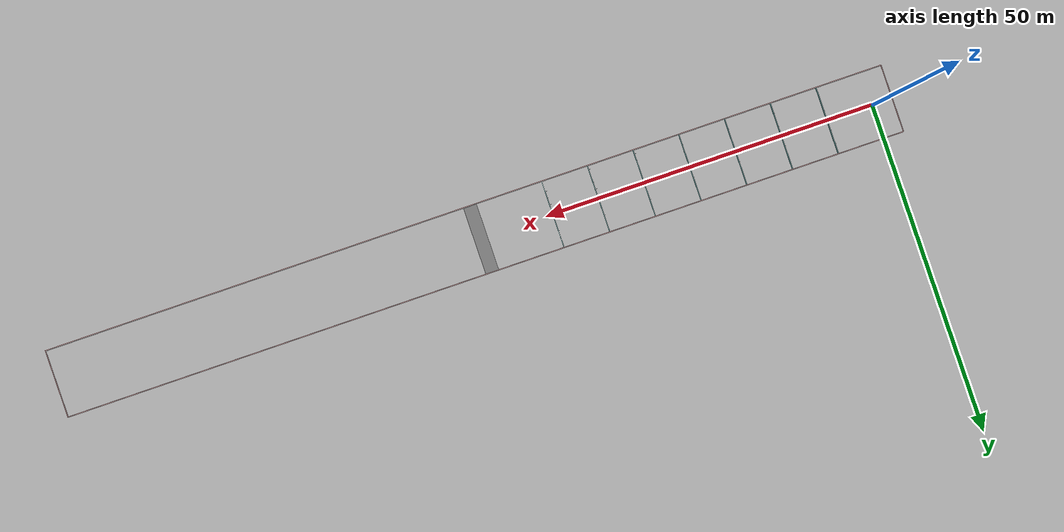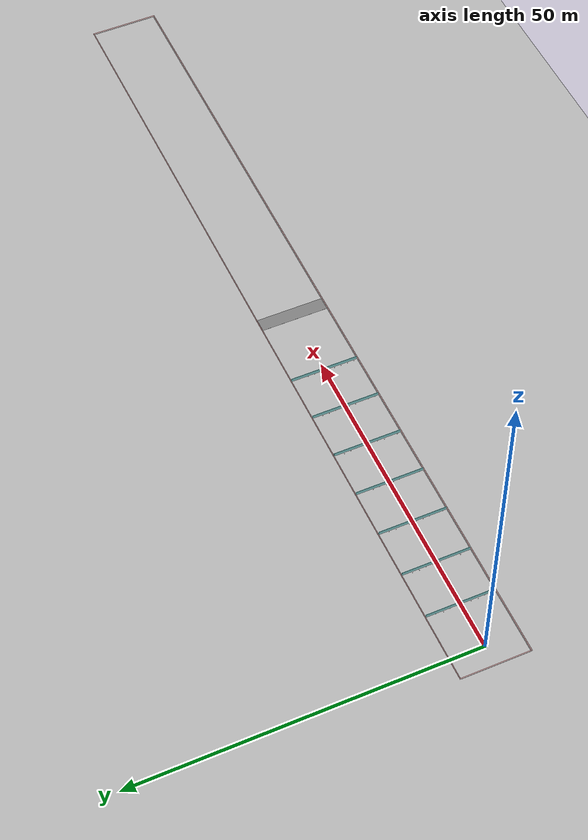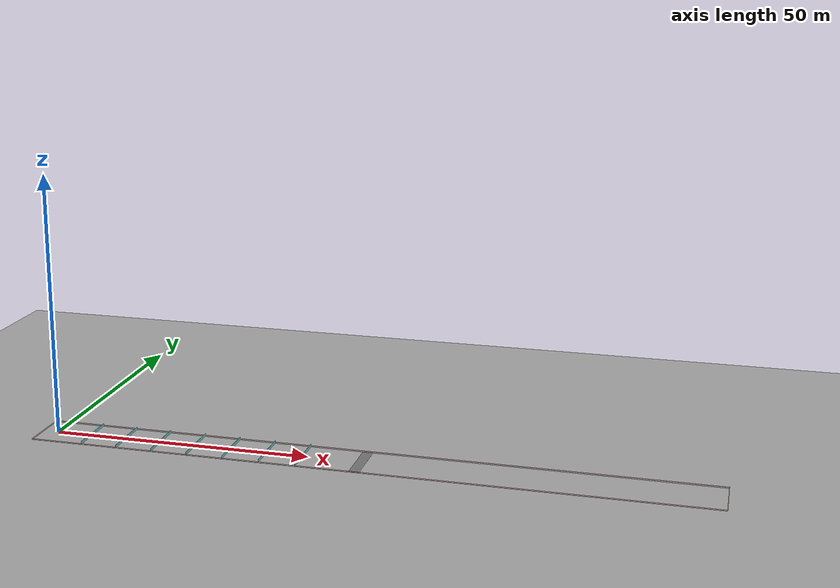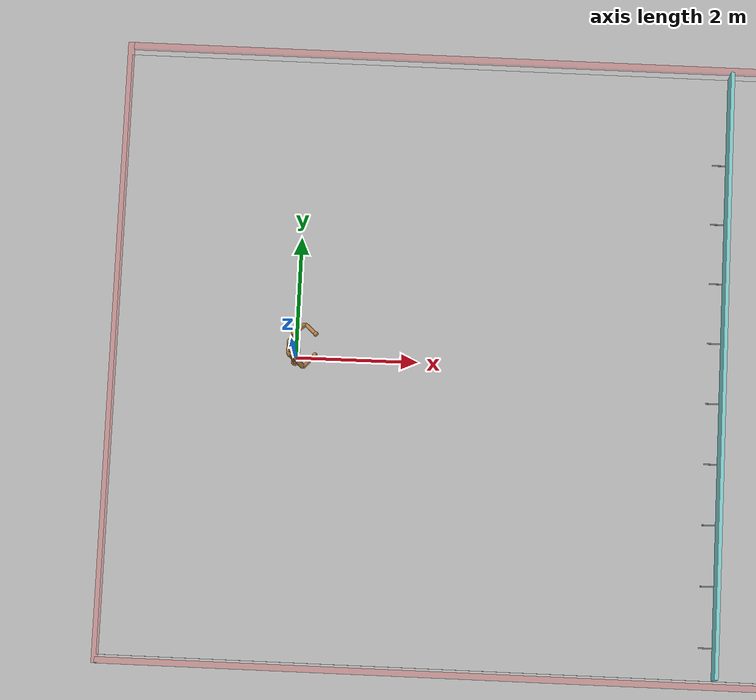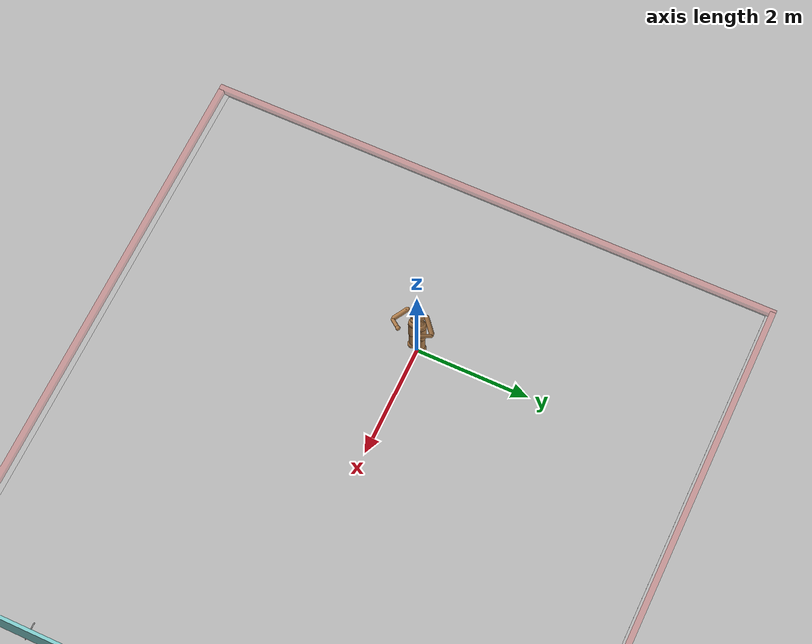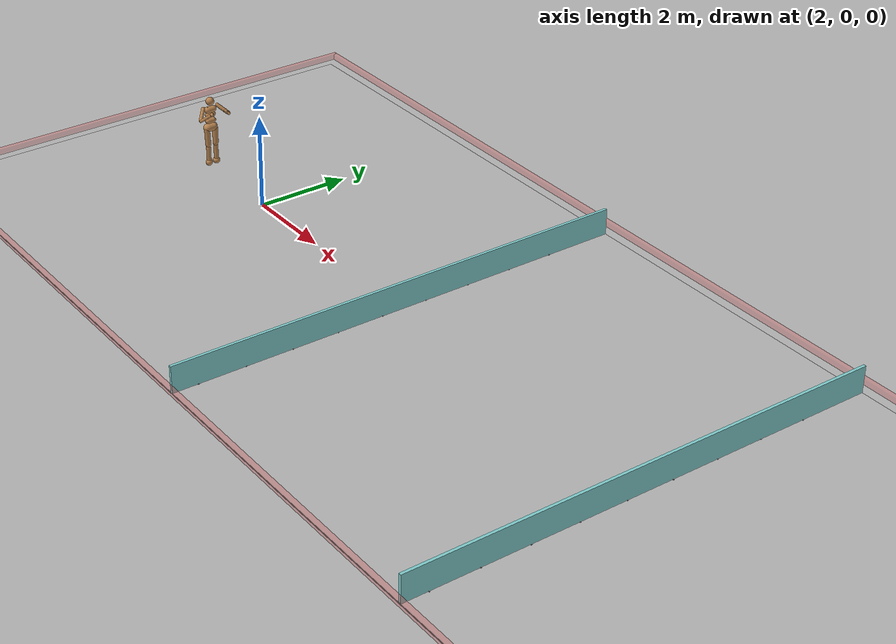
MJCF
<mujoco model="hurdles humanoid">
  <option timestep="0.004" iterations="4" ls_iterations="8" solver="Newton">
    <flag eulerdamp="disable"/>
  </option>

  <statistic center="0 0 0.1" extent="10.0" meansize="0.04"/>

  <visual>
    <rgba force="1 0 0 1" haze = "0.71 0.71 0.71 0.51" fog="0.71 0.71 0.71 1" rangefinder="1 1 0.1 0.11"/>
    <global azimuth="140" elevation="-20" offwidth="1920" offheight="1080"/>
  </visual>

  <asset>
    <texture type="skybox" builtin="gradient" rgb1="0.71 0.71 0.71" rgb2="0.71 0.71 0.71" width="800" height="800"/>
    <texture name="grey_squares" builtin="checker" height="800" width="800" rgb1="0.71 0.71 0.71" rgb2="0.71 0.71 0.71" type="2d" mark="edge" markrgb="1 1 1"/>
    <texture name="blue_white_gradient" type="2d" builtin="gradient" width="256" height="256" rgb1="0.0 0.6 0.6" rgb2="1.0 1.0 1.0" random="0.12"/>
    <texture name="black_white_checkers" type="2d" builtin="checker" width="512" height="512" rgb1="0 0 0" rgb2="1 1 1"/>

    <material name="body" rgba=".7 .5 .3 1" specular="0.9" shininess="0.8"/>
    <material name="floor" reflectance="0" texrepeat="1 1" texuniform="true" texture="grey_squares"/>
    <material name="hurdle" texture="blue_white_gradient" texuniform="true" specular="0.3" shininess="0.6"/>
    <material name="hurdle_feet" rgba="1 1 1 0.51" texuniform="true" specular="0.3" shininess="0.6"/>
    <material name="finish_line" texture="black_white_checkers" texrepeat="2 10"/>
  </asset>

  <default>
    <geom contype="0" conaffinity="0" condim="3"/>
    <joint armature="1" damping="1" limited="true"/>
    <motor ctrllimited="true" ctrlrange="-.4 .4"/>
    <default class="humanoid">
      <geom type="capsule" material="body"/>
    </default>
    <default class="hurdle">
      <geom material="hurdle"/>
    </default>
    <default class="hurdle_feet">
      <geom material="hurdle_feet"/>
    </default>
  </default>

  <worldbody>
    <!-- Building out the track -->
    <geom name="floor" pos="61 0 0" size="64 5 0.010" type="box" material="floor"/>
    <geom name="floor_bottom" pos="0 0 -10" size="0 0 0.010" type="plane" material="floor"/>
    <geom name="side_railing1" type="box" pos="61 5.1 0.2" size="64. 0.05 0.06" rgba="0.9 0.3 0.3 0.31"/>
    <geom name="side_railing2" type="box" pos="61 -5.1 0.2" size="64. 0.05 0.06" rgba="0.9 0.3 0.3 0.31"/>
    <geom name="front_railing" type="box" pos="125.0 0.0 0.2" size="0.05 5.15 0.06" rgba="0.9 0.3 0.3 0.31"/>
    <geom name="back_railing" type="box" pos="-3.0 0.0 0.2" size="0.05 5.15 0.06" rgba="0.9 0.3 0.3 0.31"/>
    <geom name="finish_line" type="box" pos="60 0 0.01" size="1 5 0.01" material="finish_line"/>

    <!-- Humanoid -->
    <body name="humanoid" childclass="humanoid" pos="0 0 1.40">

      <light name="tracking_light" pos="0 0 7" dir="0 0 -1" specular="0.8 0.8 0.8" mode="trackcom"/>
      <camera name="cam_default" mode="trackcom" pos="-6.716 -1.785 2.220" xyaxes="-0.046 -0.999 -0.000 0.235 -0.011 0.972"/>
      <site name="humanoid" size="0.01" pos="-0 0 -0"/>

      <joint name="humanoid_root" type="free" armature="0" damping="0" limited="false" pos="0 0 0" stiffness="0"/>
      <geom name="humanoid_torso" fromto="0 -.07 0 0 .07 0" size="0.07" type="capsule"/>

      <body name="humanoid_head" pos="0 0 0.19">
        <geom name="humanoid_head" pos="0 0 0" size=".09" type="sphere"/>
        <site name="humanoid_ray_00" fromto=".23 -.02  -.03 .17 0 .0" type="capsule" size=".002 .1" group="4"/>
        <site name="humanoid_ray_01" fromto=".23 -.01  -.03 .17 0 .0" type="capsule" size=".002 .1" group="4"/>
        <site name="humanoid_ray_02" fromto=".23   0   -.03 .17 0 .0" type="capsule" size=".002 .1" group="4"/>
        <site name="humanoid_ray_03" fromto=".23  .01  -.03 .17 0 .0" type="capsule" size=".002 .1" group="4"/>
        <site name="humanoid_ray_04" fromto=".23  .02  -.03 .17 0 .0" type="capsule" size=".002 .1" group="4"/>

        <site name="humanoid_ray_05" fromto=".22 -.02  -.03  .17 0 .0" type="capsule" size=".002 .1" group="4"/>
        <site name="humanoid_ray_06" fromto=".22 -.01  -.03  .17 0 .0" type="capsule" size=".002 .1" group="4"/>
        <site name="humanoid_ray_07" fromto=".22   0   -.03  .17 0 .0" type="capsule" size=".002 .1" group="4"/>
        <site name="humanoid_ray_08" fromto=".22  .01  -.03  .17 0 .0" type="capsule" size=".002 .1" group="4"/>
        <site name="humanoid_ray_09" fromto=".22  .02  -.03  .17 0 .0" type="capsule" size=".002 .1" group="4"/>

        <site name="humanoid_ray_10" fromto=".21 -.02  -.03 .17 0 .0" type="capsule" size=".002 .1" group="4"/>
        <site name="humanoid_ray_11" fromto=".21 -.01  -.03 .17 0 .0" type="capsule" size=".002 .1" group="4"/>
        <site name="humanoid_ray_12" fromto=".21   0   -.03 .17 0 .0" type="capsule" size=".002 .1" group="4"/>
        <site name="humanoid_ray_13" fromto=".21  .01  -.03 .17 0 .0" type="capsule" size=".002 .1" group="4"/>
        <site name="humanoid_ray_14" fromto=".21  .02  -.03 .17 0 .0" type="capsule" size=".002 .1" group="4"/>

        <site name="humanoid_ray_15" fromto=".2 -.02  -.03 .17 0 .0" type="capsule" size=".002 .1" group="4"/>
        <site name="humanoid_ray_16" fromto=".2 -.01  -.03 .17 0 .0" type="capsule" size=".002 .1" group="4"/>
        <site name="humanoid_ray_17" fromto=".2   0   -.03 .17 0 .0" type="capsule" size=".002 .1" group="4"/>
        <site name="humanoid_ray_18" fromto=".2  .01  -.03 .17 0 .0" type="capsule" size=".002 .1" group="4"/>
        <site name="humanoid_ray_19" fromto=".2  .02  -.03 .17 0 .0" type="capsule" size=".002 .1" group="4"/>

        <site name="humanoid_ray_20" fromto=".19 -.02  -.03 .17  0 .0" type="capsule" size=".002 .1" group="4"/>
        <site name="humanoid_ray_21" fromto=".19 -.01  -.03 .17  0 .0" type="capsule" size=".002 .1" group="4"/>
        <site name="humanoid_ray_22" fromto=".19   0   -.03 .17  0 .0" type="capsule" size=".002 .1" group="4"/>
        <site name="humanoid_ray_23" fromto=".19  .01  -.03 .17  0 .0" type="capsule" size=".002 .1" group="4"/>
        <site name="humanoid_ray_24" fromto=".19  .02  -.03 .17  0 .0" type="capsule" size=".002 .1" group="4"/>

        <site name="humanoid_ray_25" fromto=".18 -.02  -.03 .17  0 .00" type="capsule" size=".002 .1" group="4"/>
        <site name="humanoid_ray_26" fromto=".18 -.01  -.03 .17  0 .00" type="capsule" size=".002 .1" group="4"/>
        <site name="humanoid_ray_27" fromto=".18   0   -.03 .17  0 .00" type="capsule" size=".002 .1" group="4"/>
        <site name="humanoid_ray_28" fromto=".18  .01  -.03 .17  0 .00" type="capsule" size=".002 .1" group="4"/>
        <site name="humanoid_ray_29" fromto=".18  .02  -.03 .17  0 .00" type="capsule" size=".002 .1" group="4"/>
      </body>

      <geom name="humanoid_uwaist" fromto="-.01 -.06 -.12 -.01 .06 -.12" size="0.06" type="capsule"/>
      <body name="humanoid_lwaist" pos="-.01 0 -0.260" quat="1.000 0 -0.002 0">
        <geom name="humanoid_lwaist" fromto="0 -.06 0 0 .06 0" size="0.06" type="capsule"/>
        <joint name="humanoid_abdomen_z" armature="0.02" axis="0 0 1" damping="5" pos="0 0 0.065" range="-45 45" stiffness="20" type="hinge"/>
        <joint name="humanoid_abdomen_y" armature="0.02" axis="0 1 0" damping="5" pos="0 0 0.065" range="-75 30" stiffness="10" type="hinge"/>
        <body name="humanoid_pelvis" pos="0 0 -0.165" quat="1.000 0 -0.002 0">
          <joint name="humanoid_abdomen_x" armature="0.02" axis="1 0 0" damping="5" pos="0 0 0.1" range="-35 35" stiffness="10" type="hinge"/>
          <geom name="humanoid_butt" fromto="-.02 -.07 0 -.02 .07 0" size="0.09" type="capsule"/>
          <body name="humanoid_right_thigh" pos="0 -0.1 -0.04">
            <joint name="humanoid_right_hip_x" armature="0.01" axis="1 0 0" damping="5" pos="0 0 0" range="-25 5" stiffness="10" type="hinge"/>
            <joint name="humanoid_right_hip_z" armature="0.01" axis="0 0 1" damping="5" pos="0 0 0" range="-60 35" stiffness="10" type="hinge"/>
            <joint name="humanoid_right_hip_y" armature="0.0080" axis="0 1 0" damping="5" pos="0 0 0" range="-110 20" stiffness="20" type="hinge"/>
            <geom name="humanoid_right_thigh" fromto="0 0 0 0 0.01 -.34" size="0.06" type="capsule"/>
            <body name="humanoid_right_shin" pos="0 0.01 -0.403">
              <joint name="humanoid_right_knee" armature="0.0060" axis="0 -1 0" pos="0 0 .02" range="-160 -2" type="hinge"/>
              <geom name="humanoid_right_shin" fromto="0 0 0 0 0 -.3" size="0.049" type="capsule"/>
              <body name="humanoid_right_foot" pos="0 0 -0.45">
                <geom name="humanoid_right_foot" pos="0 0 0.1" size="0.075" type="sphere"/>
              </body>
            </body>
          </body>
          <body name="humanoid_left_thigh" pos="0 0.1 -0.04">
            <joint name="humanoid_left_hip_x" armature="0.01" axis="-1 0 0" damping="5" pos="0 0 0" range="-25 5" stiffness="10" type="hinge"/>
            <joint name="humanoid_left_hip_z" armature="0.01" axis="0 0 -1" damping="5" pos="0 0 0" range="-60 35" stiffness="10" type="hinge"/>
            <joint name="humanoid_left_hip_y" armature="0.01" axis="0 1 0" damping="5" pos="0 0 0" range="-110 20" stiffness="20" type="hinge"/>
            <geom name="humanoid_left_thigh" fromto="0 0 0 0 -0.01 -.34" size="0.06" type="capsule"/>
            <body name="humanoid_left_shin" pos="0 -0.01 -0.403">
              <joint name="humanoid_left_knee" armature="0.0060" axis="0 -1 0" pos="0 0 .02" range="-160 -2" stiffness="1" type="hinge"/>
              <geom name="humanoid_left_shin" fromto="0 0 0 0 0 -.3" size="0.049" type="capsule"/>
              <body name="humanoid_left_foot" pos="0 0 -0.45">
                <geom name="humanoid_left_foot" type="sphere" size="0.075" pos="0 0 0.1"/>
              </body>
            </body>
          </body>
        </body>
      </body>
      <body name="humanoid_right_upper_arm" pos="0 -0.17 0.06">
        <joint name="humanoid_right_shoulder1" armature="0.0068" axis="2 1 1" pos="0 0 0" range="-85 60" stiffness="1" type="hinge"/>
        <joint name="humanoid_right_shoulder2" armature="0.0051" axis="0 -1 1" pos="0 0 0" range="-85 60" stiffness="1" type="hinge"/>
        <geom name="humanoid_right_uarm" fromto="0 0 0 .16 -.16 -.16" size="0.04 0.16" type="capsule"/>
        <body name="humanoid_right_lower_arm" pos=".18 -.18 -.18">
          <joint name="humanoid_right_elbow" armature="0.0028" axis="0 -1 1" pos="0 0 0" range="-90 50" stiffness="0" type="hinge"/>
          <geom name="humanoid_right_larm" fromto="0.01 0.01 0.01 .17 .17 .17" size="0.031" type="capsule"/>
          <geom name="humanoid_right_hand" pos=".18 .18 .18" size="0.04" type="sphere"/>
        </body>
      </body>
      <body name="humanoid_left_upper_arm" pos="0 0.17 0.06">
        <joint name="humanoid_left_shoulder1" armature="0.0068" axis="2 -1 1" pos="0 0 0" range="-60 85" stiffness="1" type="hinge"/>
        <joint name="humanoid_left_shoulder2" armature="0.0051" axis="0 1 1" pos="0 0 0" range="-60 85" stiffness="1" type="hinge"/>
        <geom name="humanoid_left_uarm" fromto="0 0 0 .16 .16 -.16" size="0.04 0.16" type="capsule"/>
        <body name="humanoid_left_lower_arm" pos=".18 .18 -.18">
          <joint name="humanoid_left_elbow" armature="0.0028" axis="0 -1 -1" pos="0 0 0" range="-90 50" stiffness="0" type="hinge"/>
          <geom name="humanoid_left_larm" fromto="0.01 -0.01 0.01 .17 -.17 .17" size="0.031" type="capsule"/>
          <geom name="humanoid_left_hand" pos=".18 -.18 .18" size="0.04" type="sphere"/>
        </body>
      </body>
    </body>

    <body name="hurdle_array" pos="0 0 0" >
        <!-- Hurdle row 1 -->
        <body name="starting_hurdle_1_0" pos="7 0 0">
            <geom type="box" pos="-0.1 -0.47 0.01" size="0.15 0.01 0.01"/>
        </body>

        <body name="starting_hurdle_1_1" pos="7 1 0">
            <geom type="box" pos="-0.1 -0.47 0.01" size="0.15 0.01 0.01"/>
        </body>
        <body name="starting_hurdle_1_-1" pos="7 -1 0">
            <geom type="box" pos="-0.1 -0.47 0.01" size="0.15 0.01 0.01"/>
        </body>

        <body name="starting_hurdle_1_2" pos="7 2 0">
            <geom type="box" pos="-0.1 -0.47 0.01" size="0.15 0.01 0.01"/>
        </body>
        <body name="starting_hurdle_1_-2" pos="7 -2 0">
            <geom type="box" pos="-0.1 -0.47 0.01" size="0.15 0.01 0.01"/>
        </body>

        <body name="starting_hurdle_1_3" pos="7 3 0">
            <geom type="box" pos="-0.1 -0.47 0.01" size="0.15 0.01 0.01"/>
        </body>
        <body name="starting_hurdle_1_-3" pos="7 -3 0">
            <geom type="box" pos="-0.1 -0.47 0.01" size="0.15 0.01 0.01"/>
        </body>

        <body name="starting_hurdle_1_4" pos="7 4 0">
            <geom type="box" pos="-0.1 -0.47 0.01" size="0.15 0.01 0.01"/>
        </body>
        <body name="starting_hurdle_1_-4" pos="7 -4 0">
            <geom type="box" pos="-0.1 -0.47 0.01" size="0.15 0.01 0.01"/>
        </body>

        <!-- Hurdle row 2 -->
        <body name="starting_hurdle_2_0" pos="14 0 0">
            <geom type="box" pos="-0.1 -0.47 0.01" size="0.15 0.01 0.01"/>
        </body>

        <body name="starting_hurdle_2_1" pos="14 1 0">
            <geom type="box" pos="-0.1 -0.47 0.01" size="0.15 0.01 0.01"/>
        </body>
        <body name="starting_hurdle_2_-1" pos="14 -1 0">
            <geom type="box" pos="-0.1 -0.47 0.01" size="0.15 0.01 0.01"/>
        </body>

        <body name="starting_hurdle_2_2" pos="14 2 0">
            <geom type="box" pos="-0.1 -0.47 0.01" size="0.15 0.01 0.01"/>
        </body>
        <body name="starting_hurdle_2_-2" pos="14 -2 0">
            <geom type="box" pos="-0.1 -0.47 0.01" size="0.15 0.01 0.01"/>
        </body>

        <body name="starting_hurdle_2_3" pos="14 3 0">
            <geom type="box" pos="-0.1 -0.47 0.01" size="0.15 0.01 0.01"/>
        </body>
        <body name="starting_hurdle_2_-3" pos="14 -3 0">
            <geom type="box" pos="-0.1 -0.47 0.01" size="0.15 0.01 0.01"/>
        </body>

        <body name="starting_hurdle_2_4" pos="14 4 0">
            <geom type="box" pos="-0.1 -0.47 0.01" size="0.15 0.01 0.01"/>
        </body>
        <body name="starting_hurdle_2_-4" pos="14 -4 0">
            <geom type="box" pos="-0.1 -0.47 0.01" size="0.15 0.01 0.01"/>
        </body>

        <!-- Hurdle row 3 -->
        <body name="starting_hurdle_3_0" pos="21 0 0">
            <geom type="box" pos="-0.1 -0.47 0.01" size="0.15 0.01 0.01"/>
        </body>

        <body name="starting_hurdle_3_1" pos="21 1 0">
            <geom type="box" pos="-0.1 -0.47 0.01" size="0.15 0.01 0.01"/>
        </body>
        <body name="starting_hurdle_3_-1" pos="21 -1 0">
            <geom type="box" pos="-0.1 -0.47 0.01" size="0.15 0.01 0.01"/>
        </body>

        <body name="starting_hurdle_3_2" pos="21 2 0">
            <geom type="box" pos="-0.1 -0.47 0.01" size="0.15 0.01 0.01"/>
        </body>
        <body name="starting_hurdle_3_-2" pos="21 -2 0">
            <geom type="box" pos="-0.1 -0.47 0.01" size="0.15 0.01 0.01"/>
        </body>

        <body name="starting_hurdle_3_3" pos="21 3 0">
            <geom type="box" pos="-0.1 -0.47 0.01" size="0.15 0.01 0.01"/>
        </body>
        <body name="starting_hurdle_3_-3" pos="21 -3 0">
            <geom type="box" pos="-0.1 -0.47 0.01" size="0.15 0.01 0.01"/>
        </body>

        <body name="starting_hurdle_3_4" pos="21 4 0">
            <geom type="box" pos="-0.1 -0.47 0.01" size="0.15 0.01 0.01"/>
        </body>
        <body name="starting_hurdle_3_-4" pos="21 -4 0">
            <geom type="box" pos="-0.1 -0.47 0.01" size="0.15 0.01 0.01"/>
        </body>

        <!-- Hurdle row 4 -->
        <body name="starting_hurdle_4_0" pos="28 0 0">
            <geom type="box" pos="-0.1 -0.47 0.01" size="0.15 0.01 0.01"/>
        </body>

        <body name="starting_hurdle_4_1" pos="28 1 0">
            <geom type="box" pos="-0.1 -0.47 0.01" size="0.15 0.01 0.01"/>
        </body>
        <body name="starting_hurdle_4_-1" pos="28 -1 0">
            <geom type="box" pos="-0.1 -0.47 0.01" size="0.15 0.01 0.01"/>
        </body>

        <body name="starting_hurdle_4_2" pos="28 2 0">
            <geom type="box" pos="-0.1 -0.47 0.01" size="0.15 0.01 0.01"/>
        </body>
        <body name="starting_hurdle_4_-2" pos="28 -2 0">
            <geom type="box" pos="-0.1 -0.47 0.01" size="0.15 0.01 0.01"/>
        </body>

        <body name="starting_hurdle_4_3" pos="28 3 0">
            <geom type="box" pos="-0.1 -0.47 0.01" size="0.15 0.01 0.01"/>
        </body>
        <body name="starting_hurdle_4_-3" pos="28 -3 0">
            <geom type="box" pos="-0.1 -0.47 0.01" size="0.15 0.01 0.01"/>
        </body>

        <body name="starting_hurdle_4_4" pos="28 4 0">
            <geom type="box" pos="-0.1 -0.47 0.01" size="0.15 0.01 0.01"/>
        </body>
        <body name="starting_hurdle_4_-4" pos="28 -4 0">
            <geom type="box" pos="-0.1 -0.47 0.01" size="0.15 0.01 0.01"/>
        </body>

        <!-- Hurdle row 5 -->
        <body name="starting_hurdle_5_0" pos="35 0 0">
            <geom type="box" pos="-0.1 -0.47 0.01" size="0.15 0.01 0.01"/>
        </body>

        <body name="starting_hurdle_5_1" pos="35 1 0">
            <geom type="box" pos="-0.1 -0.47 0.01" size="0.15 0.01 0.01"/>
        </body>
        <body name="starting_hurdle_5_-1" pos="35 -1 0">
            <geom type="box" pos="-0.1 -0.47 0.01" size="0.15 0.01 0.01"/>
        </body>

        <body name="starting_hurdle_5_2" pos="35 2 0">
            <geom type="box" pos="-0.1 -0.47 0.01" size="0.15 0.01 0.01"/>
        </body>
        <body name="starting_hurdle_5_-2" pos="35 -2 0">
            <geom type="box" pos="-0.1 -0.47 0.01" size="0.15 0.01 0.01"/>
        </body>

        <body name="starting_hurdle_5_3" pos="35 3 0">
            <geom type="box" pos="-0.1 -0.47 0.01" size="0.15 0.01 0.01"/>
        </body>
        <body name="starting_hurdle_5_-3" pos="35 -3 0">
            <geom type="box" pos="-0.1 -0.47 0.01" size="0.15 0.01 0.01"/>
        </body>

        <body name="starting_hurdle_5_4" pos="35 4 0">
            <geom type="box" pos="-0.1 -0.47 0.01" size="0.15 0.01 0.01"/>
        </body>
        <body name="starting_hurdle_5_-4" pos="35 -4 0">
            <geom type="box" pos="-0.1 -0.47 0.01" size="0.15 0.01 0.01"/>
        </body>

        <!-- Hurdle row 6 -->
        <body name="starting_hurdle_6_0" pos="42 0 0">
            <geom type="box" pos="-0.1 -0.47 0.01" size="0.15 0.01 0.01"/>
        </body>

        <body name="starting_hurdle_6_1" pos="42 1 0">
            <geom type="box" pos="-0.1 -0.47 0.01" size="0.15 0.01 0.01"/>
        </body>
        <body name="starting_hurdle_6_-1" pos="42 -1 0">
            <geom type="box" pos="-0.1 -0.47 0.01" size="0.15 0.01 0.01"/>
        </body>

        <body name="starting_hurdle_6_2" pos="42 2 0">
            <geom type="box" pos="-0.1 -0.47 0.01" size="0.15 0.01 0.01"/>
        </body>
        <body name="starting_hurdle_6_-2" pos="42 -2 0">
            <geom type="box" pos="-0.1 -0.47 0.01" size="0.15 0.01 0.01"/>
        </body>

        <body name="starting_hurdle_6_3" pos="42 3 0">
            <geom type="box" pos="-0.1 -0.47 0.01" size="0.15 0.01 0.01"/>
        </body>
        <body name="starting_hurdle_6_-3" pos="42 -3 0">
            <geom type="box" pos="-0.1 -0.47 0.01" size="0.15 0.01 0.01"/>
        </body>

        <body name="starting_hurdle_6_4" pos="42 4 0">
            <geom type="box" pos="-0.1 -0.47 0.01" size="0.15 0.01 0.01"/>
        </body>
        <body name="starting_hurdle_6_-4" pos="42 -4 0">
            <geom type="box" pos="-0.1 -0.47 0.01" size="0.15 0.01 0.01"/>
        </body>

        <!-- Hurdle row 7 -->
        <body name="starting_hurdle_7_0" pos="49 0 0">
            <geom type="box" pos="-0.1 -0.47 0.01" size="0.15 0.01 0.01"/>
        </body>

        <body name="starting_hurdle_7_1" pos="49 1 0">
            <geom type="box" pos="-0.1 -0.47 0.01" size="0.15 0.01 0.01"/>
        </body>
        <body name="starting_hurdle_7_-1" pos="49 -1 0">
            <geom type="box" pos="-0.1 -0.47 0.01" size="0.15 0.01 0.01"/>
        </body>

        <body name="starting_hurdle_7_2" pos="49 2 0">
            <geom type="box" pos="-0.1 -0.47 0.01" size="0.15 0.01 0.01"/>
        </body>
        <body name="starting_hurdle_7_-2" pos="49 -2 0">
            <geom type="box" pos="-0.1 -0.47 0.01" size="0.15 0.01 0.01"/>
        </body>

        <body name="starting_hurdle_7_3" pos="49 3 0">
            <geom type="box" pos="-0.1 -0.47 0.01" size="0.15 0.01 0.01"/>
        </body>
        <body name="starting_hurdle_7_-3" pos="49 -3 0">
            <geom type="box" pos="-0.1 -0.47 0.01" size="0.15 0.01 0.01"/>
        </body>

        <body name="starting_hurdle_7_4" pos="49 4 0">
            <geom type="box" pos="-0.1 -0.47 0.01" size="0.15 0.01 0.01"/>
        </body>
        <body name="starting_hurdle_7_-4" pos="49 -4 0">
            <geom type="box" pos="-0.1 -0.47 0.01" size="0.15 0.01 0.01"/>
        </body>
    </body>

    <!-- Collisions for each row of Hurdles -->
    <body name="hurdles" pos="0 0 0" childclass="hurdle">
      <geom type="box" name="hurdle1_collision" pos="7 0 0.2875" size="0.03 5 0.2875"/>
      <geom type="box" name="hurdle2_collision" pos="14 0 0.2875" size="0.03 5 0.2875"/>
      <geom type="box" name="hurdle3_collision" pos="21 0 0.2875" size="0.03 5 0.2875"/>
      <geom type="box" name="hurdle4_collision" pos="28 0 0.2875" size="0.03 5 0.2875"/>
      <geom type="box" name="hurdle5_collision" pos="35 0 0.2875" size="0.03 5 0.2875"/>
      <geom type="box" name="hurdle6_collision" pos="42 0 0.2875" size="0.03 5 0.2875"/>
      <geom type="box" name="hurdle7_collision" pos="49 0 0.2875" size="0.03 5 0.2875"/>
    </body>
  </worldbody>

  <contact>
    <pair geom1="humanoid_left_foot" geom2="floor" friction="1 1 0.1 0.1 0.1"/>
    <pair geom1="humanoid_right_foot" geom2="floor" friction="1 1 0.1 0.1 0.1"/>
    <pair geom1="humanoid_torso" geom2="floor" condim="1"/>
    <pair geom1="humanoid_torso" geom2="floor_bottom" condim="1"/>

    <pair geom1="humanoid_left_foot" geom2="hurdle1_collision" condim="1"/>
    <pair geom1="humanoid_left_foot" geom2="hurdle2_collision" condim="1"/>
    <pair geom1="humanoid_left_foot" geom2="hurdle3_collision" condim="1"/>
    <pair geom1="humanoid_left_foot" geom2="hurdle4_collision" condim="1"/>
    <pair geom1="humanoid_left_foot" geom2="hurdle5_collision" condim="1"/>
    <pair geom1="humanoid_left_foot" geom2="hurdle6_collision" condim="1"/>
    <pair geom1="humanoid_left_foot" geom2="hurdle7_collision" condim="1"/>

    <pair geom1="humanoid_right_foot" geom2="hurdle1_collision" condim="1"/>
    <pair geom1="humanoid_right_foot" geom2="hurdle2_collision" condim="1"/>
    <pair geom1="humanoid_right_foot" geom2="hurdle3_collision" condim="1"/>
    <pair geom1="humanoid_right_foot" geom2="hurdle4_collision" condim="1"/>
    <pair geom1="humanoid_right_foot" geom2="hurdle5_collision" condim="1"/>
    <pair geom1="humanoid_right_foot" geom2="hurdle6_collision" condim="1"/>
    <pair geom1="humanoid_right_foot" geom2="hurdle7_collision" condim="1"/>

    <pair geom1="humanoid_left_shin" geom2="hurdle1_collision" condim="1"/>
    <pair geom1="humanoid_left_shin" geom2="hurdle2_collision" condim="1"/>
    <pair geom1="humanoid_left_shin" geom2="hurdle3_collision" condim="1"/>
    <pair geom1="humanoid_left_shin" geom2="hurdle4_collision" condim="1"/>
    <pair geom1="humanoid_left_shin" geom2="hurdle5_collision" condim="1"/>
    <pair geom1="humanoid_left_shin" geom2="hurdle6_collision" condim="1"/>
    <pair geom1="humanoid_left_shin" geom2="hurdle7_collision" condim="1"/>

    <pair geom1="humanoid_right_shin" geom2="hurdle1_collision" condim="1"/>
    <pair geom1="humanoid_right_shin" geom2="hurdle2_collision" condim="1"/>
    <pair geom1="humanoid_right_shin" geom2="hurdle3_collision" condim="1"/>
    <pair geom1="humanoid_right_shin" geom2="hurdle4_collision" condim="1"/>
    <pair geom1="humanoid_right_shin" geom2="hurdle5_collision" condim="1"/>
    <pair geom1="humanoid_right_shin" geom2="hurdle6_collision" condim="1"/>
    <pair geom1="humanoid_right_shin" geom2="hurdle7_collision" condim="1"/>

    <pair geom1="humanoid_left_thigh" geom2="hurdle1_collision" condim="1"/>
    <pair geom1="humanoid_left_thigh" geom2="hurdle2_collision" condim="1"/>
    <pair geom1="humanoid_left_thigh" geom2="hurdle3_collision" condim="1"/>
    <pair geom1="humanoid_left_thigh" geom2="hurdle4_collision" condim="1"/>
    <pair geom1="humanoid_left_thigh" geom2="hurdle5_collision" condim="1"/>
    <pair geom1="humanoid_left_thigh" geom2="hurdle6_collision" condim="1"/>
    <pair geom1="humanoid_left_thigh" geom2="hurdle7_collision" condim="1"/>

    <pair geom1="humanoid_right_thigh" geom2="hurdle1_collision" condim="1"/>
    <pair geom1="humanoid_right_thigh" geom2="hurdle2_collision" condim="1"/>
    <pair geom1="humanoid_right_thigh" geom2="hurdle3_collision" condim="1"/>
    <pair geom1="humanoid_right_thigh" geom2="hurdle4_collision" condim="1"/>
    <pair geom1="humanoid_right_thigh" geom2="hurdle5_collision" condim="1"/>
    <pair geom1="humanoid_right_thigh" geom2="hurdle6_collision" condim="1"/>
    <pair geom1="humanoid_right_thigh" geom2="hurdle7_collision" condim="1"/>

    <pair geom1="humanoid_right_foot" geom2="humanoid_left_foot" condim="1"/>

    <!-- stop clipping with humanoid left leg -->
    <pair geom1="humanoid_left_foot" geom2="humanoid_left_thigh" condim="1"/>
    <pair geom1="humanoid_left_foot" geom2="humanoid_butt" condim="1"/>
    <pair geom1="humanoid_left_foot" geom2="humanoid_right_shin" condim="1"/>
    <pair geom1="humanoid_left_foot" geom2="humanoid_right_thigh" condim="1"/>

    <pair geom1="humanoid_left_shin" geom2="humanoid_right_thigh" condim="1"/>

    <!-- stop clipping with humanoid right leg -->
    <pair geom1="humanoid_right_foot" geom2="humanoid_right_thigh" condim="1"/>
    <pair geom1="humanoid_right_foot" geom2="humanoid_butt" condim="1"/>
    <pair geom1="humanoid_right_foot" geom2="humanoid_left_shin" condim="1"/>
    <pair geom1="humanoid_right_foot" geom2="humanoid_left_thigh" condim="1"/>

    <pair geom1="humanoid_right_shin" geom2="humanoid_left_thigh" condim="1"/>
  </contact>

  <actuator>
    <!-- Actuators for humanoid -->
    <motor gear="100" joint="humanoid_abdomen_y" name="humanoid_abdomen_y"/>
    <motor gear="100" joint="humanoid_abdomen_z" name="humanoid_abdomen_z"/>
    <motor gear="100" joint="humanoid_abdomen_x" name="humanoid_abdomen_x"/>
    <motor gear="100" joint="humanoid_right_hip_x" name="humanoid_right_hip_x"/>
    <motor gear="100" joint="humanoid_right_hip_z" name="humanoid_right_hip_z"/>
    <motor gear="300" joint="humanoid_right_hip_y" name="humanoid_right_hip_y"/>
    <motor gear="200" joint="humanoid_right_knee" name="humanoid_right_knee"/>
    <motor gear="100" joint="humanoid_left_hip_x" name="humanoid_left_hip_x"/>
    <motor gear="100" joint="humanoid_left_hip_z" name="humanoid_left_hip_z"/>
    <motor gear="300" joint="humanoid_left_hip_y" name="humanoid_left_hip_y"/>
    <motor gear="200" joint="humanoid_left_knee" name="humanoid_left_knee"/>
    <motor gear="25" joint="humanoid_right_shoulder1" name="humanoid_right_shoulder1"/>
    <motor gear="25" joint="humanoid_right_shoulder2" name="humanoid_right_shoulder2"/>
    <motor gear="25" joint="humanoid_right_elbow" name="humanoid_right_elbow"/>
    <motor gear="25" joint="humanoid_left_shoulder1" name="humanoid_left_shoulder1"/>
    <motor gear="25" joint="humanoid_left_shoulder2" name="humanoid_left_shoulder2"/>
    <motor gear="25" joint="humanoid_left_elbow" name="humanoid_left_elbow"/>
  </actuator>

  <sensor>
    <rangefinder name="humanoid_ray_00" site="humanoid_ray_00"/>
    <rangefinder name="humanoid_ray_01" site="humanoid_ray_01"/>
    <rangefinder name="humanoid_ray_02" site="humanoid_ray_02"/>
    <rangefinder name="humanoid_ray_03" site="humanoid_ray_03"/>
    <rangefinder name="humanoid_ray_04" site="humanoid_ray_04"/>

    <rangefinder name="humanoid_ray_05" site="humanoid_ray_05"/>
    <rangefinder name="humanoid_ray_06" site="humanoid_ray_06"/>
    <rangefinder name="humanoid_ray_07" site="humanoid_ray_07"/>
    <rangefinder name="humanoid_ray_08" site="humanoid_ray_08"/>
    <rangefinder name="humanoid_ray_09" site="humanoid_ray_09"/>

    <rangefinder name="humanoid_ray_10" site="humanoid_ray_10"/>
    <rangefinder name="humanoid_ray_11" site="humanoid_ray_11"/>
    <rangefinder name="humanoid_ray_12" site="humanoid_ray_12"/>
    <rangefinder name="humanoid_ray_13" site="humanoid_ray_13"/>
    <rangefinder name="humanoid_ray_14" site="humanoid_ray_14"/>

    <rangefinder name="humanoid_ray_15" site="humanoid_ray_15"/>
    <rangefinder name="humanoid_ray_16" site="humanoid_ray_16"/>
    <rangefinder name="humanoid_ray_17" site="humanoid_ray_17"/>
    <rangefinder name="humanoid_ray_18" site="humanoid_ray_18"/>
    <rangefinder name="humanoid_ray_19" site="humanoid_ray_19"/>

    <rangefinder name="humanoid_ray_20" site="humanoid_ray_20"/>
    <rangefinder name="humanoid_ray_21" site="humanoid_ray_21"/>
    <rangefinder name="humanoid_ray_22" site="humanoid_ray_22"/>
    <rangefinder name="humanoid_ray_23" site="humanoid_ray_23"/>
    <rangefinder name="humanoid_ray_24" site="humanoid_ray_24"/>

    <rangefinder name="humanoid_ray_25" site="humanoid_ray_25"/>
    <rangefinder name="humanoid_ray_26" site="humanoid_ray_26"/>
    <rangefinder name="humanoid_ray_27" site="humanoid_ray_27"/>
    <rangefinder name="humanoid_ray_28" site="humanoid_ray_28"/>
    <rangefinder name="humanoid_ray_29" site="humanoid_ray_29"/>
  </sensor>
</mujoco>
